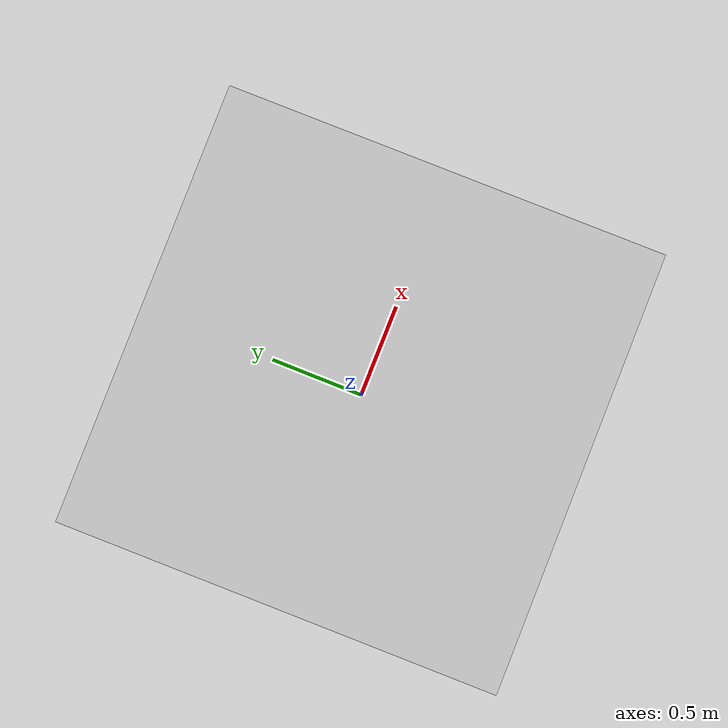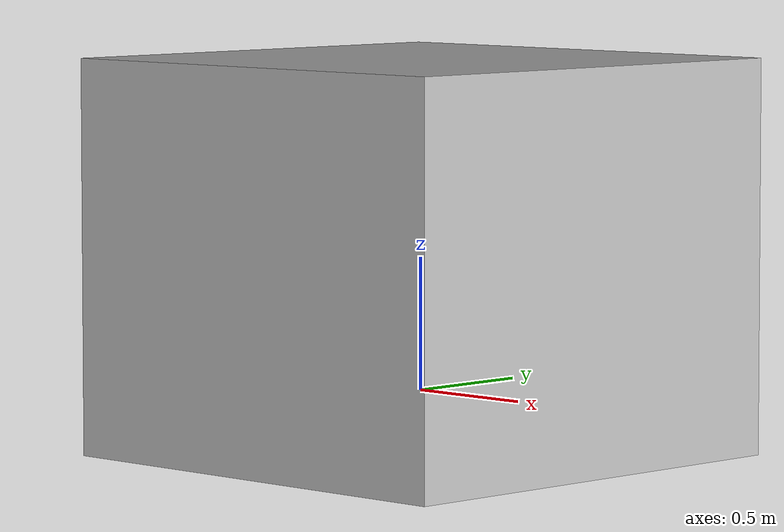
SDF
<?xml version='1.0'?>
<sdf version="1.4">
    <model name="blocking_obstacle">
        <pose>0 0 0.5 0 0 0</pose>
        <static>true</static>
        <link name="link">
            <inertial>
                <mass>1.0</mass>
                <inertia>
                    <ixx>0.083</ixx>
                    <ixy>0.0</ixy>
                    <ixz>0.0</ixz>
                    <iyy>0.83</iyy>
                    <iyz>0.0</iyz>
                    <izz>0.083</izz>
                </inertia>
            </inertial>
            <collision name="collision">
                <geometry>
                    <box>
                        <size>1.8 1.8 1.5</size>
                    </box>
                </geometry>
            </collision>
            <visual name="visual">
                <geometry>
                    <box>
                        <size>1.8 1.8 1.5</size>
                    </box>
                </geometry>
            </visual>
        </link>
    </model>
</sdf>
